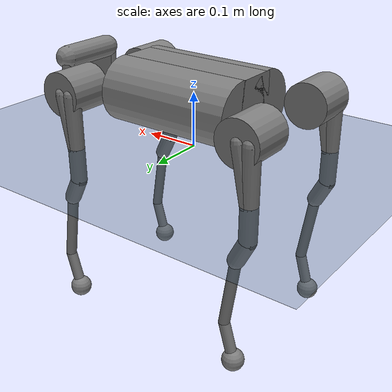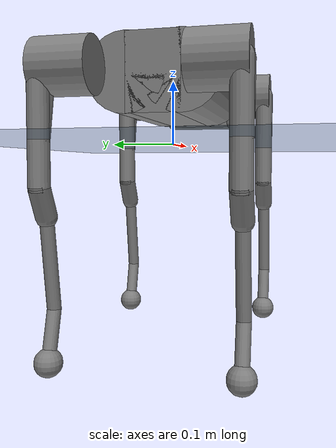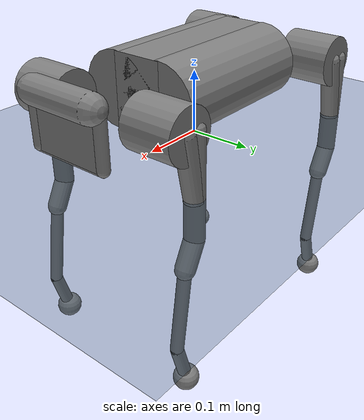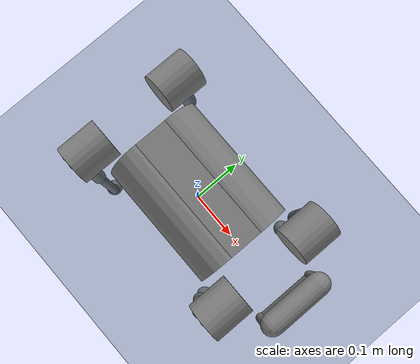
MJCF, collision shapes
<mujoco model="a1 scene">
  <include file="../../common/skybox.xml"/>
  <include file="../../common/visual.xml"/>
  <include file="../../common/materials.xml"/>
  <include file="a1_stand.xml"/>

  <statistic center="0 0 0.1" extent="0.8"/>

  <asset>
    <texture type="cube" name="table_easy0" file="marble2.png" />
    <texture type="cube" name="table_easy1" file="metal2.png" />
    <texture type="cube" name="table_easy2" file="metal1.png" />
    <texture type="cube" name="table_easy3" file="skin.png" />
    <texture type="cube" name="table_easy4" file="light_wood_v2.png" />
    <texture type="cube" name="table_easy5" file="wood1.png" />
    <texture type="cube" name="table_easy6" file="woodb.png" />
    <texture type="cube" name="table_easy7" file="floor1.png" />
    <texture type="cube" name="table_easy8" file="granite.png" />
    <texture type="cube" name="table_easy9" file="metal.png" />
    <texture type="cube" name="table_hard0" file="city1.png" />
    <texture type="cube" name="table_hard1" file="city2.png" />
    <texture type="cube" name="table_hard2" file="city3.png" />
    <texture type="cube" name="table_hard3" file="foil.png" />
    <texture type="cube" name="table_hard4" file="silverRaw.png" />
    <texture type="cube" name="table_hard5" file="square.png" />
    <texture type="cube" name="table_hard6" file="darkwood.png" />
    <texture type="cube" name="table_hard7" file="brick1.png" />
    <texture type="cube" name="table_hard8" file="tennis.png" />
    <texture type="cube" name="table_hard9" file="wood4.png" />
    <texture type="2d" name="groundplane" builtin="checker" mark="edge" rgb1="0.2 0.3 0.4"
        rgb2="0.1 0.2 0.3" markrgb="0.8 0.8 0.8" width="300" height="300"/>
    <material name="groundplane" texture="groundplane" texuniform="true" texrepeat="5 5"
        reflectance="0.2"/>
  </asset>

  <worldbody>
    <light name='original' directional='false' diffuse='.7 .7 .7' specular='0.03 0.03 0.03' pos='-1 -1.0 4.0' dir='1 1.0 -4'/>

    <geom name="floor" size="0 0 0.05" type="plane" material="groundplane"/>
  </worldbody>

</mujoco>

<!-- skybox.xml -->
<mujoco>
    <asset>
        <texture name="skybox" type="skybox" builtin="gradient" rgb1=".4 .6 .8" rgb2="0 0 0"
                 width="800" height="800" mark="random" markrgb="1 1 1"/>
    </asset>
</mujoco>

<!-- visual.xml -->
<mujoco>
    <visual>
        <headlight ambient=".4 .4 .4" diffuse=".8 .8 .8" specular="0.1 0.1 0.1"/>
        <map znear=".01"/>
        <quality shadowsize="2048"/>
    </visual>
</mujoco>

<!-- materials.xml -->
<!--
Common textures, colors and materials to be used throughout this suite. Some
materials such as xxx_highlight are activated on occurence of certain events,
for example receiving a positive reward.
-->
<mujoco>

  <asset>
    <texture name="grid" type="2d" builtin="checker" rgb1=".1 .2 .3" rgb2=".2 .3 .4" width="300" height="300" mark="edge" markrgb=".2 .3 .4"/>
    <material name="grid" texture="grid" texrepeat="1 1" texuniform="true" reflectance=".2"/>
    <material name="self" rgba=".7 .5 .3 1"/>
    <material name="self_default" rgba=".7 .5 .3 1"/>
    <material name="self_highlight" rgba="0 .5 .3 1"/>
    <material name="effector" rgba=".7 .4 .2 1"/>
    <material name="effector_default" rgba=".7 .4 .2 1"/>
    <material name="effector_highlight" rgba="0 .5 .3 1"/>
    <material name="decoration" rgba=".3 .5 .7 1"/>
    <material name="eye" rgba="0 .2 1 1"/>
    <material name="target" rgba=".6 .3 .3 1"/>
    <material name="target_default" rgba=".6 .3 .3 1"/>
    <material name="target_highlight" rgba=".6 .3 .3 .4"/>
    <material name="site" rgba=".5 .5 .5 .3"/>

<!--    for franka and unitree-->
    <material name="white" rgba="1 1 1 1"/>
    <material name="dark" specular="0" shininess="0.25" rgba="0.2 0.2 0.2 1"/>
    <material name="carbonfibre" rgba="0.25 0.25 0.25 1" specular="0" shininess="0.25"/>
    <material name="obj_color" rgba="1 0 0 1"/>
  </asset>
</mujoco>

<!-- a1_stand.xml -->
<mujoco model="a1">
  <compiler angle="radian" meshdir="assets" texturedir="assets" autolimits="true"/>

  <option cone="elliptic" impratio="100"/>

  <default>
    <default class="a1">
      <geom friction="0.6" margin="0.001"/>
      <joint axis="0 1 0" damping="2" armature="0.01" frictionloss="0.2"/>
      <position kp="100" forcerange="-33.5 33.5"/>
      <default class="abduction">
        <joint axis="1 0 0" damping="1" range="-0.802851 0.802851"/>
        <position ctrlrange="-0.802851 0.802851"/>
      </default>
      <default class="hip">
        <joint range="-1.0472 4.18879"/>
        <position ctrlrange="-1.0472 4.18879"/>
      </default>
      <default class="knee">
        <joint range="-2.69653 -0.916298"/>
        <position ctrlrange="-2.69653 -0.916298"/>
      </default>
      <default class="visual">
        <geom type="mesh" contype="0" conaffinity="0" group="2" material="dark"/>
      </default>
      <default class="collision">
        <geom group="3" type="capsule"/>
        <default class="hip_left">
          <geom size="0.04 0.04" quat="1 1 0 0" type="cylinder" pos="0 0.055 0"/>
        </default>
        <default class="hip_right">
          <geom size="0.04 0.04" quat="1 1 0 0" type="cylinder" pos="0 -0.055 0"/>
        </default>
        <default class="thigh1">
          <geom size="0.015" fromto="-0.02 0 0 -0.02 0 -0.16"/>
        </default>
        <default class="thigh2">
          <geom size="0.015" fromto="0 0 0 -0.02 0 -0.1"/>
        </default>
        <default class="thigh3">
          <geom size="0.015" fromto="-0.02 0 -0.16 0 0 -0.2"/>
        </default>
        <default class="calf1">
          <geom size="0.01" fromto="0 0 0 0.02 0 -0.13"/>
        </default>
        <default class="calf2">
          <geom size="0.01" fromto="0.02 0 -0.13 0 0 -0.2"/>
        </default>
        <default class="foot">
          <geom type="sphere" size="0.02" pos="0 0 -0.2" priority="1" solimp="0.015 1 0.031"
              condim="6" friction="0.8 0.02 0.01"/>
        </default>
      </default>
    </default>
  </default>

  <asset>

    <mesh class="a1" file="calf.obj"/>
    <mesh class="a1" file="hip.obj"/>
    <mesh class="a1" file="thigh.obj"/>
    <mesh class="a1" file="thigh_mirror.obj"/>
    <mesh class="a1" file="trunk.obj"/>
  </asset>

  <worldbody>
    <light name="spotlight" mode="targetbodycom" target="trunk" pos="0 -1 2"/>
    <body name="trunk" pos="0 0 0.096" childclass="a1">
      <freejoint/>
      <inertial mass="4.713" pos="0 0.0041 -0.0005"
          fullinertia="0.0158533 0.0377999 0.0456542 -3.66e-05 -6.11e-05 -2.75e-05"/>
      <geom class="visual" mesh="trunk" material="carbonfibre"/>
      <geom class="collision" size="0.125 0.04 0.057" type="box"/>
      <geom class="collision" quat="1 0 1 0" pos="0 -0.04 0" size="0.058 0.125" type="cylinder"/>
      <geom class="collision" quat="1 0 1 0" pos="0 +0.04 0" size="0.058 0.125" type="cylinder"/>
      <geom class="collision" pos="0.25 0 0" size="0.005 0.06 0.05" type="box"/>
      <geom class="collision" pos="0.25 0.06 -0.01" size="0.009 0.035"/>
      <geom class="collision" pos="0.25 -0.06 -0.01" size="0.009 0.035"/>
      <geom class="collision" pos="0.25 0 -0.05" size="0.005 0.06" quat="1 1 0 0"/>
      <geom class="collision" pos="0.255 0 0.0355" size="0.021 0.052" quat="1 1 0 0"/>
      <camera name="back_above"  pos="0.7 0.0 0.5" euler="0 .83 1.57" mode="targetbody"/>
      <!-- 第二 -->
      <!-- 第三 -->

      <camera name="y"  pos="0 2.5 1.5" xyaxes="-1 0 0 0 -.5 1" mode="trackcom"/>
      <camera name="y1"  pos="0 2 .5" xyaxes="-1 0 0 0 -.2 1" mode="trackcom"/>
      <body name="FR_hip" pos="0.183 -0.047 0">
        <inertial mass="0.696" pos="-0.003311 -0.000635 3.1e-05"
            quat="0.507528 0.506268 0.491507 0.494499"
            diaginertia="0.000807752 0.00055293 0.000468983"/>
        <joint class="abduction" name="FR_hip_joint"/>
        <geom class="visual" mesh="hip" quat="0 1 0 0"/>
        <geom class="hip_right"/>
        <body name="FR_thigh" pos="0 -0.08505 0">
          <inertial mass="1.013" pos="-0.003237 0.022327 -0.027326"
              quat="0.999125 -0.00256393 -0.0409531 -0.00806091"
              diaginertia="0.00555739 0.00513936 0.00133944"/>
          <joint class="hip" name="FR_thigh_joint"/>
          <geom class="visual" mesh="thigh_mirror"/>
          <geom class="thigh1"/>
          <geom class="thigh2"/>
          <geom class="thigh3"/>
          <body name="FR_calf" pos="0 0 -0.2">
            <inertial mass="0.226" pos="0.00472659 0 -0.131975"
                quat="0.706886 0.017653 0.017653 0.706886"
                diaginertia="0.00340344 0.00339393 3.54834e-05"/>
            <joint class="knee" name="FR_calf_joint"/>
            <geom class="visual" mesh="calf"/>
            <geom class="calf1"/>
            <geom class="calf2"/>
            <geom class="foot"/>
          </body>
        </body>
      </body>
      <body name="FL_hip" pos="0.183 0.047 0">
        <inertial mass="0.696" pos="-0.003311 0.000635 3.1e-05"
            quat="0.494499 0.491507 0.506268 0.507528"
            diaginertia="0.000807752 0.00055293 0.000468983"/>
        <joint class="abduction" name="FL_hip_joint"/>
        <geom class="visual" mesh="hip"/>
        <geom class="hip_left"/>
        <geom class="collision" size="0.04 0.04" pos="0 0.055 0" quat="1 1 0 0" type="cylinder"/>
        <body name="FL_thigh" pos="0 0.08505 0">
          <inertial mass="1.013" pos="-0.003237 -0.022327 -0.027326"
              quat="0.999125 0.00256393 -0.0409531 0.00806091"
              diaginertia="0.00555739 0.00513936 0.00133944"/>
          <joint class="hip" name="FL_thigh_joint"/>
          <geom class="visual" mesh="thigh"/>
          <geom class="thigh1"/>
          <geom class="thigh2"/>
          <geom class="thigh3"/>
          <body name="FL_calf" pos="0 0 -0.2">
            <inertial mass="0.226" pos="0.00472659 0 -0.131975"
                quat="0.706886 0.017653 0.017653 0.706886"
                diaginertia="0.00340344 0.00339393 3.54834e-05"/>
            <joint class="knee" name="FL_calf_joint"/>
            <geom class="visual" mesh="calf"/>
            <geom class="calf1"/>
            <geom class="calf2"/>
            <geom class="foot"/>
          </body>
        </body>
      </body>
      <body name="RR_hip" pos="-0.183 -0.047 0">
        <inertial mass="0.696" pos="0.003311 -0.000635 3.1e-05"
            quat="0.491507 0.494499 0.507528 0.506268"
            diaginertia="0.000807752 0.00055293 0.000468983"/>
        <joint class="abduction" name="RR_hip_joint"/>
        <geom class="visual" quat="0 0 0 -1" mesh="hip"/>
        <geom class="hip_right"/>
        <body name="RR_thigh" pos="0 -0.08505 0">
          <inertial mass="1.013" pos="-0.003237 0.022327 -0.027326"
              quat="0.999125 -0.00256393 -0.0409531 -0.00806091"
              diaginertia="0.00555739 0.00513936 0.00133944"/>
          <joint class="hip" name="RR_thigh_joint"/>
          <geom class="visual" mesh="thigh_mirror"/>
          <geom class="thigh1"/>
          <geom class="thigh2"/>
          <geom class="thigh3"/>
          <body name="RR_calf" pos="0 0 -0.2">
            <inertial mass="0.226" pos="0.00472659 0 -0.131975"
                quat="0.706886 0.017653 0.017653 0.706886"
                diaginertia="0.00340344 0.00339393 3.54834e-05"/>
            <joint class="knee" name="RR_calf_joint"/>
            <geom class="visual" mesh="calf"/>
            <geom class="calf1"/>
            <geom class="calf2"/>
            <geom class="foot"/>
          </body>
        </body>
      </body>
      <body name="RL_hip" pos="-0.183 0.047 0">
        <inertial mass="0.696" pos="0.003311 0.000635 3.1e-05"
            quat="0.506268 0.507528 0.494499 0.491507"
            diaginertia="0.000807752 0.00055293 0.000468983"/>
        <joint class="abduction" name="RL_hip_joint"/>
        <geom class="visual" quat="0 0 1 0" mesh="hip"/>
        <geom class="hip_left"/>
        <body name="RL_thigh" pos="0 0.08505 0">
          <inertial mass="1.013" pos="-0.003237 -0.022327 -0.027326"
              quat="0.999125 0.00256393 -0.0409531 0.00806091"
              diaginertia="0.00555739 0.00513936 0.00133944"/>
          <joint class="hip" name="RL_thigh_joint"/>
          <geom class="visual" mesh="thigh"/>
          <geom class="thigh1"/>
          <geom class="thigh2"/>
          <geom class="thigh3"/>
          <body name="RL_calf" pos="0 0 -0.2">
            <inertial mass="0.226" pos="0.00472659 0 -0.131975"
                quat="0.706886 0.017653 0.017653 0.706886"
                diaginertia="0.00340344 0.00339393 3.54834e-05"/>
            <joint class="knee" name="RL_calf_joint"/>
            <geom class="visual" mesh="calf"/>
            <geom class="calf1"/>
            <geom class="calf2"/>
            <geom class="foot"/>
          </body>
        </body>
      </body>
    </body>
  </worldbody>

  <sensor>
    <subtreelinvel name="trunk_subtreelinvel" body="trunk"/>
    <frameangvel name="trunk_frameangvel" objtype="body" objname="trunk"/>
    <framexaxis name="trunk_framexaxis" objtype="body" objname="trunk"/>
    <frameyaxis name="trunk_frameyaxis" objtype="body" objname="trunk"/>
    <framezaxis name="trunk_framezaxis" objtype="body" objname="trunk"/>
  </sensor>

  <actuator>
    <position class="abduction" name="FR_hip" joint="FR_hip_joint"/>
    <position class="hip" name="FR_thigh" joint="FR_thigh_joint"/>
    <position class="knee" name="FR_calf" joint="FR_calf_joint"/>
    <position class="abduction" name="FL_hip" joint="FL_hip_joint"/>
    <position class="hip" name="FL_thigh" joint="FL_thigh_joint"/>
    <position class="knee" name="FL_calf" joint="FL_calf_joint"/>
    <position class="abduction" name="RR_hip" joint="RR_hip_joint"/>
    <position class="hip" name="RR_thigh" joint="RR_thigh_joint"/>
    <position class="knee" name="RR_calf" joint="RR_calf_joint"/>
    <position class="abduction" name="RL_hip" joint="RL_hip_joint"/>
    <position class="hip" name="RL_thigh" joint="RL_thigh_joint"/>
    <position class="knee" name="RL_calf" joint="RL_calf_joint"/>
  </actuator>

  <keyframe>
    <key name="home" qpos="0 0 0.27 1 0 0 0 0 0.9 -1.8 0 0.9 -1.8 0 0.9 -1.8 0 0.9 -1.8"
        ctrl="0 0.9 -1.8 0 0.9 -1.8 0 0.9 -1.8 0 0.9 -1.8"/>
  </keyframe>

</mujoco>
